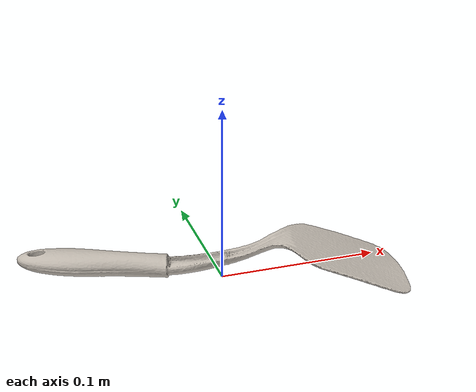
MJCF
<mujoco model="bread">
  <asset>
    <mesh file="nontextured.stl" name="obj_mesh" scale="0.8 0.8 0.8"/>
    <texture file="../../../../../textures/bread.png" type="2d" name="tex-bread" />
    <material name="bread" reflectance="0.7" texrepeat="15 15" texture="tex-bread" texuniform="true"/>
  </asset>
  <worldbody>
    <body>
      <body name="collision">
        <geom pos="0.027177999999999994 0.097023 -0.0157785" mesh="obj_mesh" type="mesh" solimp="0.998 0.998 0.001" solref="0.001 1" density="50" friction="0.95 0.3 0.1"  material="bread" group="1" condim="4"/>
      </body>
      <body name="visual">
        <geom pos="0.027177999999999994 0.097023 -0.0157785" mesh="obj_mesh" type="mesh" material="bread"  conaffinity="0" contype="0"  group="0" mass="0.0001"/>
        <geom pos="0.027177999999999994 0.097023 -0.0157785" mesh="obj_mesh" type="mesh" material="bread"  conaffinity="0" contype="0"  group="1" mass="0.0001"/>
      </body>
      <site rgba="0 0 0 0" size="0.005" pos="0 0 -0.016466500000000002" name="bottom_site"/>
      <site rgba="0 0 0 0" size="0.005" pos="0 0 0.016466500000000002" name="top_site"/>
      <site rgba="0 0 0 0" size="0.005" pos="0.15276099999999998 0.06229699999999999 0.016466500000000002" name="horizontal_radius_site"/>
    </body>
  </worldbody>
</mujoco>
